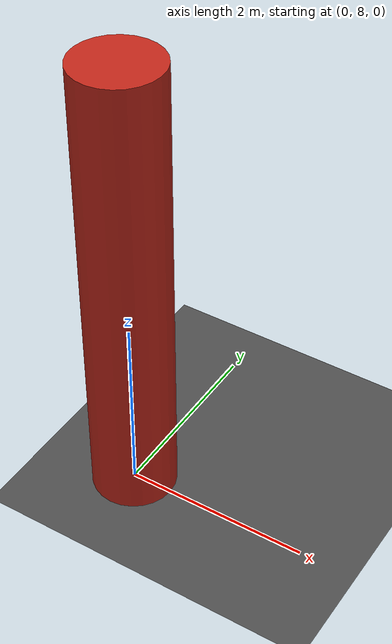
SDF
<?xml version="1.0" ?>
<sdf version="1.9">
  <world name="s1_single_obstacle">
    <physics name="1ms" type="ode">
      <max_step_size>0.004</max_step_size>
      <real_time_factor>1.0</real_time_factor>
    </physics>
    <gravity>0 0 -9.8</gravity>
    <magnetic_field>6e-06 2.3e-05 -4.2e-05</magnetic_field>
    <atmosphere type="adiabatic"/>
    <spherical_coordinates><surface_model>EARTH_WGS84</surface_model><world_frame_orientation>ENU</world_frame_orientation><latitude_deg>47.397971057728974</latitude_deg><longitude_deg>8.546163739800146</longitude_deg><elevation>0</elevation></spherical_coordinates>
    <plugin filename="gz-sim-physics-system" name="gz::sim::systems::Physics"/>
    <plugin filename="gz-sim-user-commands-system" name="gz::sim::systems::UserCommands"/>
    <plugin filename="gz-sim-scene-broadcaster-system" name="gz::sim::systems::SceneBroadcaster"/>
    <plugin filename="gz-sim-contact-system" name="gz::sim::systems::Contact"/>
    <plugin filename="gz-sim-imu-system" name="gz::sim::systems::Imu"/>
    <plugin filename="gz-sim-air-pressure-system" name="gz::sim::systems::AirPressure"/>
    <plugin filename="gz-sim-air-speed-system" name="gz::sim::systems::AirSpeed"/>
    <plugin filename="gz-sim-navsat-system" name="gz::sim::systems::NavSat"/>
    <plugin filename="gz-sim-magnetometer-system" name="gz::sim::systems::Magnetometer"/>
    <plugin filename="gz-sim-sensors-system" name="gz::sim::systems::Sensors">
      <render_engine>ogre2</render_engine>
    </plugin>
    <light type="directional" name="sun"><cast_shadows>true</cast_shadows><pose>0 0 10 0 0 0</pose><diffuse>0.8 0.8 0.8 1</diffuse><specular>0.2 0.2 0.2 1</specular><attenuation><range>1000</range><constant>0.9</constant><linear>0.01</linear><quadratic>0.001</quadratic></attenuation><direction>-0.5 0.1 -0.9</direction></light>
    <model name="ground"><static>true</static><link name="link"><collision name="collision"><geometry><plane><normal>0 0 1</normal><size>100 100</size></plane></geometry></collision><visual name="visual"><geometry><plane><normal>0 0 1</normal><size>100 100</size></plane></geometry><material><ambient>0.3 0.3 0.3 1</ambient><diffuse>0.3 0.3 0.3 1</diffuse></material></visual></link></model>
    <!-- PX4 local forward (+N/x) maps to Gazebo +Y in this bridge. -->
    <model name="s1_obstacle"><static>true</static><pose>0 8 2.5 0 0 0</pose><link name="link"><collision name="collision"><geometry><cylinder><radius>0.45</radius><length>5.0</length></cylinder></geometry></collision><visual name="visual"><geometry><cylinder><radius>0.45</radius><length>5.0</length></cylinder></geometry><material><diffuse>0.75 0.15 0.1 1</diffuse></material></visual></link></model>
  </world>
</sdf>
